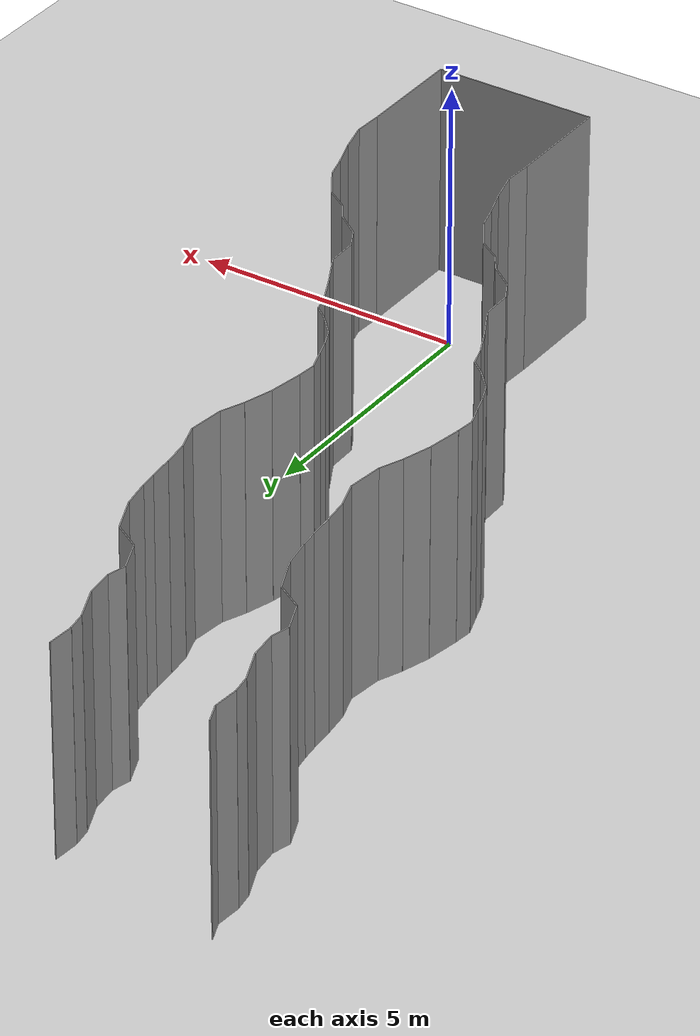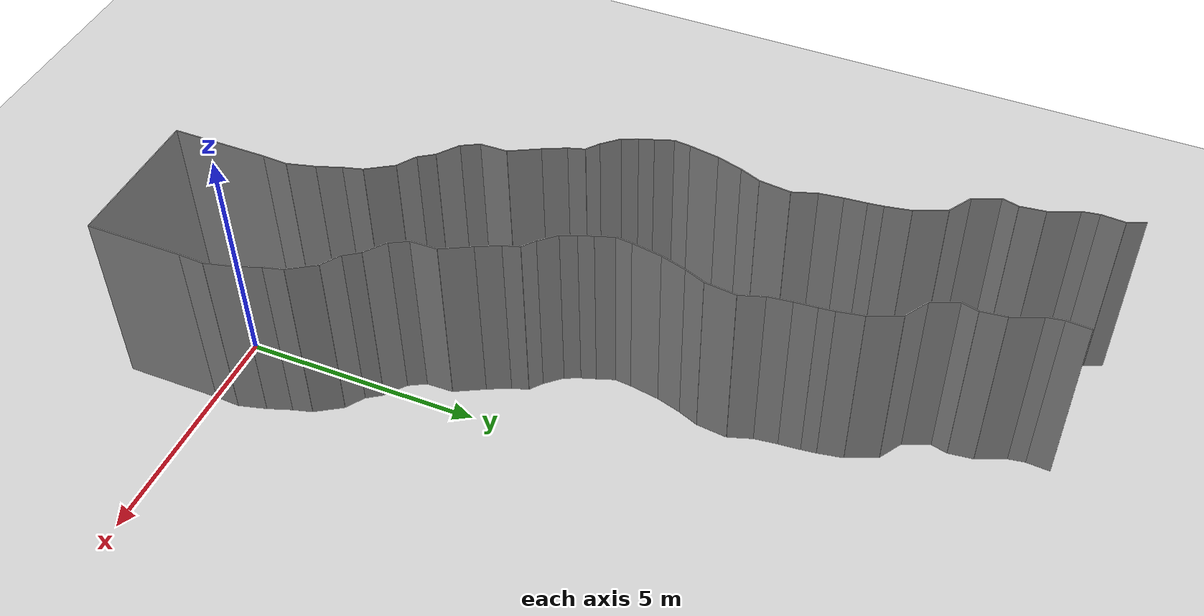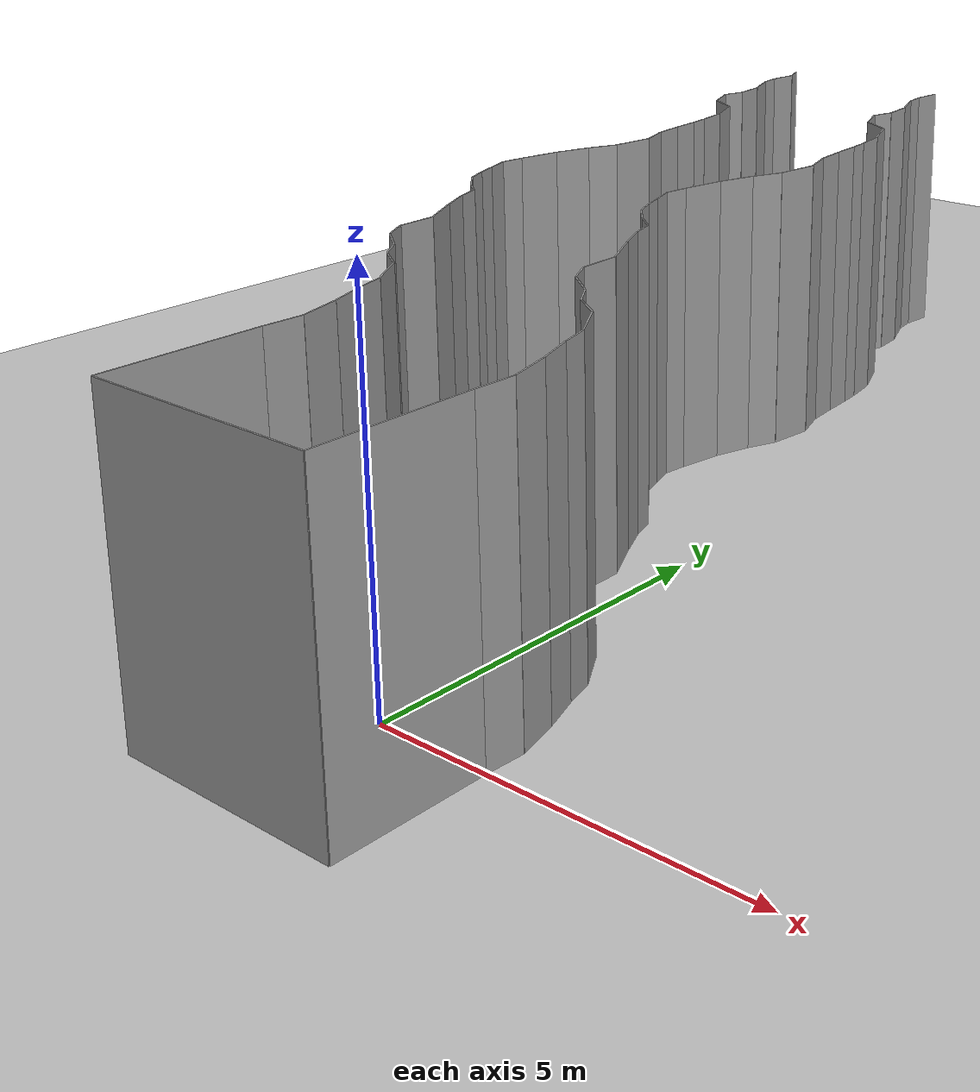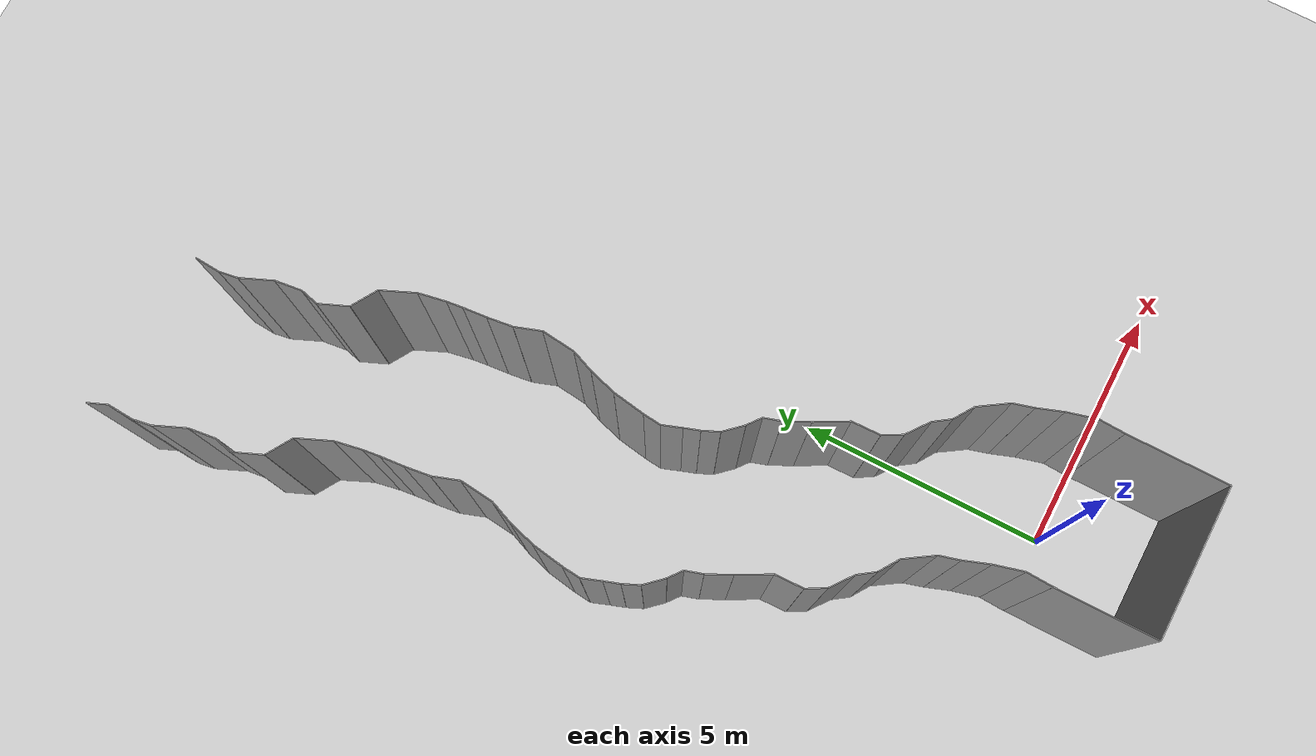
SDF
<sdf version="1.6">
 <world name="default">
  <model name="ground_plane">
   <static>1</static>
   <link name="link">
    <collision name="collision">
     <geometry><plane><normal>0 0 1</normal><size>200 200</size></plane></geometry>
     <surface><friction><ode><mu>100</mu><mu2>50</mu2></ode></friction></surface>
    </collision>
    <visual name="visual">
     <cast_shadows>0</cast_shadows>
     <geometry><plane><normal>0 0 1</normal><size>200 200</size></plane></geometry>
     <material>
      <script><uri>file://media/materials/scripts/gazebo.material</uri><name>Gazebo/Grey</name></script>
     </material>
    </visual>
   </link>
   <pose>0 100 0 0 -0 0</pose>
  </model>
  <model name="wall_back">
   <static>1</static>
   <pose>0.0 -2 2 0.0 0 0.0</pose>
   <link name="link">
    <collision name="collision"><geometry><box><size>3 0.02 4</size></box></geometry></collision>
    <visual name="visual">
     <material>
      <script><name>Gazebo/Grey</name><uri>file://media/materials/scripts/gazebo.material</uri></script>
     </material>
     <geometry><box><size>3 0.02 4</size></box></geometry>
    </visual>
   </link>
  </model>
  <model name="wall_left">
   <static>1</static>
   <pose>1.5 -1 2 0 0 0.00</pose>
   <link name="link">
    <collision name="collision"><geometry><box><size>0.02 2 4</size></box></geometry></collision>
    <visual name="visual">
     <material>
      <script><name>Gazebo/Grey</name><uri>file://media/materials/scripts/gazebo.material</uri></script>
     </material>
     <geometry><box><size>0.02 2 4</size></box></geometry>
    </visual>
   </link>
  </model>
  <model name="wall_right">
   <static>1</static>
   <pose>-1.5 -1 2 0 0 0.00</pose>
   <link name="link">
    <collision name="collision"><geometry><box><size>0.02 2 4</size></box></geometry></collision>
    <visual name="visual">
     <material>
      <script><name>Gazebo/Grey</name><uri>file://media/materials/scripts/gazebo.material</uri></script>
     </material>
     <geometry><box><size>0.02 2 4</size></box></geometry>
    </visual>
   </link>
  </model>
  <model name="wall_0">
   <static>1</static>
   <pose>-1.488196250125821 0.2607669083539488 2 0 0 -0.045234642740819266</pose>
   <link name="link">
    <collision name="collision"><geometry><box><size>0.02 0.522067846179 4</size></box></geometry></collision>
    <visual name="visual">
     <material>
      <script><name>Gazebo/Grey</name><uri>file://media/materials/scripts/gazebo.material</uri></script>
     </material>
     <geometry><box><size>0.02 0.522067846179 4</size></box></geometry>
    </visual>
   </link>
  </model>
  <model name="wall_1">
   <static>1</static>
   <pose>1.511803749874179 0.2607669083539488 2 0 0 -0.045234642740819266</pose>
   <link name="link">
    <collision name="collision"><geometry><box><size>0.02 0.522067846179 4</size></box></geometry></collision>
    <visual name="visual">
     <material>
      <script><name>Gazebo/Grey</name><uri>file://media/materials/scripts/gazebo.material</uri></script>
     </material>
     <geometry><box><size>0.02 0.522067846179 4</size></box></geometry>
    </visual>
   </link>
  </model>
  <model name="wall_2">
   <static>1</static>
   <pose>-1.5514209833075863 0.8059642517263823 2 0 0 0.25791011651710716</pose>
   <link name="link">
    <collision name="collision"><geometry><box><size>0.02 0.588319456195 4</size></box></geometry></collision>
    <visual name="visual">
     <material>
      <script><name>Gazebo/Grey</name><uri>file://media/materials/scripts/gazebo.material</uri></script>
     </material>
     <geometry><box><size>0.02 0.588319456195 4</size></box></geometry>
    </visual>
   </link>
  </model>
  <model name="wall_3">
   <static>1</static>
   <pose>1.4485790166924137 0.8059642517263823 2 0 0 0.25791011651710716</pose>
   <link name="link">
    <collision name="collision"><geometry><box><size>0.02 0.588319456195 4</size></box></geometry></collision>
    <visual name="visual">
     <material>
      <script><name>Gazebo/Grey</name><uri>file://media/materials/scripts/gazebo.material</uri></script>
     </material>
     <geometry><box><size>0.02 0.588319456195 4</size></box></geometry>
    </visual>
   </link>
  </model>
  <model name="wall_4">
   <static>1</static>
   <pose>-1.7142074546539643 1.3381656480157638 2 0 0 0.3404026408139336</pose>
   <link name="link">
    <collision name="collision"><geometry><box><size>0.02 0.525706814709 4</size></box></geometry></collision>
    <visual name="visual">
     <material>
      <script><name>Gazebo/Grey</name><uri>file://media/materials/scripts/gazebo.material</uri></script>
     </material>
     <geometry><box><size>0.02 0.525706814709 4</size></box></geometry>
    </visual>
   </link>
  </model>
  <model name="wall_5">
   <static>1</static>
   <pose>1.2857925453460357 1.3381656480157638 2 0 0 0.3404026408139336</pose>
   <link name="link">
    <collision name="collision"><geometry><box><size>0.02 0.525706814709 4</size></box></geometry></collision>
    <visual name="visual">
     <material>
      <script><name>Gazebo/Grey</name><uri>file://media/materials/scripts/gazebo.material</uri></script>
     </material>
     <geometry><box><size>0.02 0.525706814709 4</size></box></geometry>
    </visual>
   </link>
  </model>
  <model name="wall_6">
   <static>1</static>
   <pose>-1.8568225131044054 1.7834236534758765 2 0 0 0.27094477200006256</pose>
   <link name="link">
    <collision name="collision"><geometry><box><size>0.02 0.40992892442 4</size></box></geometry></collision>
    <visual name="visual">
     <material>
      <script><name>Gazebo/Grey</name><uri>file://media/materials/scripts/gazebo.material</uri></script>
     </material>
     <geometry><box><size>0.02 0.40992892442 4</size></box></geometry>
    </visual>
   </link>
  </model>
  <model name="wall_7">
   <static>1</static>
   <pose>1.1431774868955946 1.7834236534758765 2 0 0 0.27094477200006256</pose>
   <link name="link">
    <collision name="collision"><geometry><box><size>0.02 0.40992892442 4</size></box></geometry></collision>
    <visual name="visual">
     <material>
      <script><name>Gazebo/Grey</name><uri>file://media/materials/scripts/gazebo.material</uri></script>
     </material>
     <geometry><box><size>0.02 0.40992892442 4</size></box></geometry>
    </visual>
   </link>
  </model>
  <model name="wall_8">
   <static>1</static>
   <pose>-2.0858675047094546 2.2504126137847265 2 0 0 0.573792885363055</pose>
   <link name="link">
    <collision name="collision"><geometry><box><size>0.02 0.64178723817 4</size></box></geometry></collision>
    <visual name="visual">
     <material>
      <script><name>Gazebo/Grey</name><uri>file://media/materials/scripts/gazebo.material</uri></script>
     </material>
     <geometry><box><size>0.02 0.64178723817 4</size></box></geometry>
    </visual>
   </link>
  </model>
  <model name="wall_9">
   <static>1</static>
   <pose>0.9141324952905454 2.2504126137847265 2 0 0 0.573792885363055</pose>
   <link name="link">
    <collision name="collision"><geometry><box><size>0.02 0.64178723817 4</size></box></geometry></collision>
    <visual name="visual">
     <material>
      <script><name>Gazebo/Grey</name><uri>file://media/materials/scripts/gazebo.material</uri></script>
     </material>
     <geometry><box><size>0.02 0.64178723817 4</size></box></geometry>
    </visual>
   </link>
  </model>
  <model name="wall_10">
   <static>1</static>
   <pose>-2.448899243307415 2.645589367669755 2 0 0 0.9836045022743397</pose>
   <link name="link">
    <collision name="collision"><geometry><box><size>0.02 0.453678970746 4</size></box></geometry></collision>
    <visual name="visual">
     <material>
      <script><name>Gazebo/Grey</name><uri>file://media/materials/scripts/gazebo.material</uri></script>
     </material>
     <geometry><box><size>0.02 0.453678970746 4</size></box></geometry>
    </visual>
   </link>
  </model>
  <model name="wall_11">
   <static>1</static>
   <pose>0.551100756692585 2.645589367669755 2 0 0 0.9836045022743397</pose>
   <link name="link">
    <collision name="collision"><geometry><box><size>0.02 0.453678970746 4</size></box></geometry></collision>
    <visual name="visual">
     <material>
      <script><name>Gazebo/Grey</name><uri>file://media/materials/scripts/gazebo.material</uri></script>
     </material>
     <geometry><box><size>0.02 0.453678970746 4</size></box></geometry>
    </visual>
   </link>
  </model>
  <model name="wall_12">
   <static>1</static>
   <pose>-2.7448915006535177 2.926327362351517 2 0 0 0.6046592441304547</pose>
   <link name="link">
    <collision name="collision"><geometry><box><size>0.02 0.376963504168 4</size></box></geometry></collision>
    <visual name="visual">
     <material>
      <script><name>Gazebo/Grey</name><uri>file://media/materials/scripts/gazebo.material</uri></script>
     </material>
     <geometry><box><size>0.02 0.376963504168 4</size></box></geometry>
    </visual>
   </link>
  </model>
  <model name="wall_13">
   <static>1</static>
   <pose>0.2551084993464823 2.926327362351517 2 0 0 0.6046592441304547</pose>
   <link name="link">
    <collision name="collision"><geometry><box><size>0.02 0.376963504168 4</size></box></geometry></collision>
    <visual name="visual">
     <material>
      <script><name>Gazebo/Grey</name><uri>file://media/materials/scripts/gazebo.material</uri></script>
     </material>
     <geometry><box><size>0.02 0.376963504168 4</size></box></geometry>
    </visual>
   </link>
  </model>
  <model name="wall_14">
   <static>1</static>
   <pose>-3.061418504655303 3.240565309927438 2 0 0 0.9207833559223908</pose>
   <link name="link">
    <collision name="collision"><geometry><box><size>0.02 0.526026603753 4</size></box></geometry></collision>
    <visual name="visual">
     <material>
      <script><name>Gazebo/Grey</name><uri>file://media/materials/scripts/gazebo.material</uri></script>
     </material>
     <geometry><box><size>0.02 0.526026603753 4</size></box></geometry>
    </visual>
   </link>
  </model>
  <model name="wall_15">
   <static>1</static>
   <pose>-0.061418504655303074 3.240565309927438 2 0 0 0.9207833559223908</pose>
   <link name="link">
    <collision name="collision"><geometry><box><size>0.02 0.526026603753 4</size></box></geometry></collision>
    <visual name="visual">
     <material>
      <script><name>Gazebo/Grey</name><uri>file://media/materials/scripts/gazebo.material</uri></script>
     </material>
     <geometry><box><size>0.02 0.526026603753 4</size></box></geometry>
    </visual>
   </link>
  </model>
  <model name="wall_16">
   <static>1</static>
   <pose>-3.368975870759927 3.578136511810658 2 0 0 0.5031047319861869</pose>
   <link name="link">
    <collision name="collision"><geometry><box><size>0.02 0.40725597237 4</size></box></geometry></collision>
    <visual name="visual">
     <material>
      <script><name>Gazebo/Grey</name><uri>file://media/materials/scripts/gazebo.material</uri></script>
     </material>
     <geometry><box><size>0.02 0.40725597237 4</size></box></geometry>
    </visual>
   </link>
  </model>
  <model name="wall_17">
   <static>1</static>
   <pose>-0.3689758707599271 3.578136511810658 2 0 0 0.5031047319861869</pose>
   <link name="link">
    <collision name="collision"><geometry><box><size>0.02 0.40725597237 4</size></box></geometry></collision>
    <visual name="visual">
     <material>
      <script><name>Gazebo/Grey</name><uri>file://media/materials/scripts/gazebo.material</uri></script>
     </material>
     <geometry><box><size>0.02 0.40725597237 4</size></box></geometry>
    </visual>
   </link>
  </model>
  <model name="wall_18">
   <static>1</static>
   <pose>-3.473970301201742 4.038109908194635 2 0 0 0.02420047766314063</pose>
   <link name="link">
    <collision name="collision"><geometry><box><size>0.02 0.563318919828 4</size></box></geometry></collision>
    <visual name="visual">
     <material>
      <script><name>Gazebo/Grey</name><uri>file://media/materials/scripts/gazebo.material</uri></script>
     </material>
     <geometry><box><size>0.02 0.563318919828 4</size></box></geometry>
    </visual>
   </link>
  </model>
  <model name="wall_19">
   <static>1</static>
   <pose>-0.4739703012017422 4.038109908194635 2 0 0 0.02420047766314063</pose>
   <link name="link">
    <collision name="collision"><geometry><box><size>0.02 0.563318919828 4</size></box></geometry></collision>
    <visual name="visual">
     <material>
      <script><name>Gazebo/Grey</name><uri>file://media/materials/scripts/gazebo.material</uri></script>
     </material>
     <geometry><box><size>0.02 0.563318919828 4</size></box></geometry>
    </visual>
   </link>
  </model>
  <model name="wall_20">
   <static>1</static>
   <pose>-3.6416938392011042 4.6202592312180615 2 0 0 0.49151705263493883</pose>
   <link name="link">
    <collision name="collision"><geometry><box><size>0.02 0.681865340788 4</size></box></geometry></collision>
    <visual name="visual">
     <material>
      <script><name>Gazebo/Grey</name><uri>file://media/materials/scripts/gazebo.material</uri></script>
     </material>
     <geometry><box><size>0.02 0.681865340788 4</size></box></geometry>
    </visual>
   </link>
  </model>
  <model name="wall_21">
   <static>1</static>
   <pose>-0.6416938392011042 4.6202592312180615 2 0 0 0.49151705263493883</pose>
   <link name="link">
    <collision name="collision"><geometry><box><size>0.02 0.681865340788 4</size></box></geometry></collision>
    <visual name="visual">
     <material>
      <script><name>Gazebo/Grey</name><uri>file://media/materials/scripts/gazebo.material</uri></script>
     </material>
     <geometry><box><size>0.02 0.681865340788 4</size></box></geometry>
    </visual>
   </link>
  </model>
  <model name="wall_22">
   <static>1</static>
   <pose>-3.9141407788428135 5.151917807327713 2 0 0 0.4496899690787338</pose>
   <link name="link">
    <collision name="collision"><geometry><box><size>0.02 0.513193159241 4</size></box></geometry></collision>
    <visual name="visual">
     <material>
      <script><name>Gazebo/Grey</name><uri>file://media/materials/scripts/gazebo.material</uri></script>
     </material>
     <geometry><box><size>0.02 0.513193159241 4</size></box></geometry>
    </visual>
   </link>
  </model>
  <model name="wall_23">
   <static>1</static>
   <pose>-0.9141407788428135 5.151917807327713 2 0 0 0.4496899690787338</pose>
   <link name="link">
    <collision name="collision"><geometry><box><size>0.02 0.513193159241 4</size></box></geometry></collision>
    <visual name="visual">
     <material>
      <script><name>Gazebo/Grey</name><uri>file://media/materials/scripts/gazebo.material</uri></script>
     </material>
     <geometry><box><size>0.02 0.513193159241 4</size></box></geometry>
    </visual>
   </link>
  </model>
  <model name="wall_24">
   <static>1</static>
   <pose>-4.078167008941469 5.551443125008185 2 0 0 0.30207329674196143</pose>
   <link name="link">
    <collision name="collision"><geometry><box><size>0.02 0.352854812505 4</size></box></geometry></collision>
    <visual name="visual">
     <material>
      <script><name>Gazebo/Grey</name><uri>file://media/materials/scripts/gazebo.material</uri></script>
     </material>
     <geometry><box><size>0.02 0.352854812505 4</size></box></geometry>
    </visual>
   </link>
  </model>
  <model name="wall_25">
   <static>1</static>
   <pose>-1.0781670089414694 5.551443125008185 2 0 0 0.30207329674196143</pose>
   <link name="link">
    <collision name="collision"><geometry><box><size>0.02 0.352854812505 4</size></box></geometry></collision>
    <visual name="visual">
     <material>
      <script><name>Gazebo/Grey</name><uri>file://media/materials/scripts/gazebo.material</uri></script>
     </material>
     <geometry><box><size>0.02 0.352854812505 4</size></box></geometry>
    </visual>
   </link>
  </model>
  <model name="wall_26">
   <static>1</static>
   <pose>-4.257138351103639 5.818999568436784 2 0 0 0.9061141826045659</pose>
   <link name="link">
    <collision name="collision"><geometry><box><size>0.02 0.321387554116 4</size></box></geometry></collision>
    <visual name="visual">
     <material>
      <script><name>Gazebo/Grey</name><uri>file://media/materials/scripts/gazebo.material</uri></script>
     </material>
     <geometry><box><size>0.02 0.321387554116 4</size></box></geometry>
    </visual>
   </link>
  </model>
  <model name="wall_27">
   <static>1</static>
   <pose>-1.257138351103639 5.818999568436784 2 0 0 0.9061141826045659</pose>
   <link name="link">
    <collision name="collision"><geometry><box><size>0.02 0.321387554116 4</size></box></geometry></collision>
    <visual name="visual">
     <material>
      <script><name>Gazebo/Grey</name><uri>file://media/materials/scripts/gazebo.material</uri></script>
     </material>
     <geometry><box><size>0.02 0.321387554116 4</size></box></geometry>
    </visual>
   </link>
  </model>
  <model name="wall_28">
   <static>1</static>
   <pose>-4.534588008272247 6.084138800445451 2 0 0 0.7379355639912297</pose>
   <link name="link">
    <collision name="collision"><geometry><box><size>0.02 0.448793259636 4</size></box></geometry></collision>
    <visual name="visual">
     <material>
      <script><name>Gazebo/Grey</name><uri>file://media/materials/scripts/gazebo.material</uri></script>
     </material>
     <geometry><box><size>0.02 0.448793259636 4</size></box></geometry>
    </visual>
   </link>
  </model>
  <model name="wall_29">
   <static>1</static>
   <pose>-1.5345880082722472 6.084138800445451 2 0 0 0.7379355639912297</pose>
   <link name="link">
    <collision name="collision"><geometry><box><size>0.02 0.448793259636 4</size></box></geometry></collision>
    <visual name="visual">
     <material>
      <script><name>Gazebo/Grey</name><uri>file://media/materials/scripts/gazebo.material</uri></script>
     </material>
     <geometry><box><size>0.02 0.448793259636 4</size></box></geometry>
    </visual>
   </link>
  </model>
  <model name="wall_30">
   <static>1</static>
   <pose>-4.754658241283097 6.408069520371159 2 0 0 0.4125145914691693</pose>
   <link name="link">
    <collision name="collision"><geometry><box><size>0.02 0.344735652462 4</size></box></geometry></collision>
    <visual name="visual">
     <material>
      <script><name>Gazebo/Grey</name><uri>file://media/materials/scripts/gazebo.material</uri></script>
     </material>
     <geometry><box><size>0.02 0.344735652462 4</size></box></geometry>
    </visual>
   </link>
  </model>
  <model name="wall_31">
   <static>1</static>
   <pose>-1.7546582412830967 6.408069520371159 2 0 0 0.4125145914691693</pose>
   <link name="link">
    <collision name="collision"><geometry><box><size>0.02 0.344735652462 4</size></box></geometry></collision>
    <visual name="visual">
     <material>
      <script><name>Gazebo/Grey</name><uri>file://media/materials/scripts/gazebo.material</uri></script>
     </material>
     <geometry><box><size>0.02 0.344735652462 4</size></box></geometry>
    </visual>
   </link>
  </model>
  <model name="wall_32">
   <static>1</static>
   <pose>-4.873573770462193 6.714864603163335 2 0 0 0.3228507294330113</pose>
   <link name="link">
    <collision name="collision"><geometry><box><size>0.02 0.313995074398 4</size></box></geometry></collision>
    <visual name="visual">
     <material>
      <script><name>Gazebo/Grey</name><uri>file://media/materials/scripts/gazebo.material</uri></script>
     </material>
     <geometry><box><size>0.02 0.313995074398 4</size></box></geometry>
    </visual>
   </link>
  </model>
  <model name="wall_33">
   <static>1</static>
   <pose>-1.873573770462193 6.714864603163335 2 0 0 0.3228507294330113</pose>
   <link name="link">
    <collision name="collision"><geometry><box><size>0.02 0.313995074398 4</size></box></geometry></collision>
    <visual name="visual">
     <material>
      <script><name>Gazebo/Grey</name><uri>file://media/materials/scripts/gazebo.material</uri></script>
     </material>
     <geometry><box><size>0.02 0.313995074398 4</size></box></geometry>
    </visual>
   </link>
  </model>
  <model name="wall_34">
   <static>1</static>
   <pose>-4.989544463483804 7.051096613824288 2 0 0 0.33947221708006825</pose>
   <link name="link">
    <collision name="collision"><geometry><box><size>0.02 0.397369204275 4</size></box></geometry></collision>
    <visual name="visual">
     <material>
      <script><name>Gazebo/Grey</name><uri>file://media/materials/scripts/gazebo.material</uri></script>
     </material>
     <geometry><box><size>0.02 0.397369204275 4</size></box></geometry>
    </visual>
   </link>
  </model>
  <model name="wall_35">
   <static>1</static>
   <pose>-1.9895444634838038 7.051096613824288 2 0 0 0.33947221708006825</pose>
   <link name="link">
    <collision name="collision"><geometry><box><size>0.02 0.397369204275 4</size></box></geometry></collision>
    <visual name="visual">
     <material>
      <script><name>Gazebo/Grey</name><uri>file://media/materials/scripts/gazebo.material</uri></script>
     </material>
     <geometry><box><size>0.02 0.397369204275 4</size></box></geometry>
    </visual>
   </link>
  </model>
  <model name="wall_36">
   <static>1</static>
   <pose>-5.037757267641564 7.4127555262891525 2 0 0 -0.10259732752561486</pose>
   <link name="link">
    <collision name="collision"><geometry><box><size>0.02 0.350469204426 4</size></box></geometry></collision>
    <visual name="visual">
     <material>
      <script><name>Gazebo/Grey</name><uri>file://media/materials/scripts/gazebo.material</uri></script>
     </material>
     <geometry><box><size>0.02 0.350469204426 4</size></box></geometry>
    </visual>
   </link>
  </model>
  <model name="wall_37">
   <static>1</static>
   <pose>-2.037757267641564 7.4127555262891525 2 0 0 -0.10259732752561486</pose>
   <link name="link">
    <collision name="collision"><geometry><box><size>0.02 0.350469204426 4</size></box></geometry></collision>
    <visual name="visual">
     <material>
      <script><name>Gazebo/Grey</name><uri>file://media/materials/scripts/gazebo.material</uri></script>
     </material>
     <geometry><box><size>0.02 0.350469204426 4</size></box></geometry>
    </visual>
   </link>
  </model>
  <model name="wall_38">
   <static>1</static>
   <pose>-4.9675300686031445 7.903795718262891 2 0 0 -0.16358857263637194</pose>
   <link name="link">
    <collision name="collision"><geometry><box><size>0.02 0.642025673028 4</size></box></geometry></collision>
    <visual name="visual">
     <material>
      <script><name>Gazebo/Grey</name><uri>file://media/materials/scripts/gazebo.material</uri></script>
     </material>
     <geometry><box><size>0.02 0.642025673028 4</size></box></geometry>
    </visual>
   </link>
  </model>
  <model name="wall_39">
   <static>1</static>
   <pose>-1.9675300686031445 7.903795718262891 2 0 0 -0.16358857263637194</pose>
   <link name="link">
    <collision name="collision"><geometry><box><size>0.02 0.642025673028 4</size></box></geometry></collision>
    <visual name="visual">
     <material>
      <script><name>Gazebo/Grey</name><uri>file://media/materials/scripts/gazebo.material</uri></script>
     </material>
     <geometry><box><size>0.02 0.642025673028 4</size></box></geometry>
    </visual>
   </link>
  </model>
  <model name="wall_40">
   <static>1</static>
   <pose>-4.835692520840622 8.486564621160776 2 0 0 -0.29057677057008835</pose>
   <link name="link">
    <collision name="collision"><geometry><box><size>0.02 0.555365272946 4</size></box></geometry></collision>
    <visual name="visual">
     <material>
      <script><name>Gazebo/Grey</name><uri>file://media/materials/scripts/gazebo.material</uri></script>
     </material>
     <geometry><box><size>0.02 0.555365272946 4</size></box></geometry>
    </visual>
   </link>
  </model>
  <model name="wall_41">
   <static>1</static>
   <pose>-1.835692520840622 8.486564621160776 2 0 0 -0.29057677057008835</pose>
   <link name="link">
    <collision name="collision"><geometry><box><size>0.02 0.555365272946 4</size></box></geometry></collision>
    <visual name="visual">
     <material>
      <script><name>Gazebo/Grey</name><uri>file://media/materials/scripts/gazebo.material</uri></script>
     </material>
     <geometry><box><size>0.02 0.555365272946 4</size></box></geometry>
    </visual>
   </link>
  </model>
  <model name="wall_42">
   <static>1</static>
   <pose>-4.667932031960981 8.969724280892786 2 0 0 -0.38587851829317765</pose>
   <link name="link">
    <collision name="collision"><geometry><box><size>0.02 0.468700016477 4</size></box></geometry></collision>
    <visual name="visual">
     <material>
      <script><name>Gazebo/Grey</name><uri>file://media/materials/scripts/gazebo.material</uri></script>
     </material>
     <geometry><box><size>0.02 0.468700016477 4</size></box></geometry>
    </visual>
   </link>
  </model>
  <model name="wall_43">
   <static>1</static>
   <pose>-1.667932031960981 8.969724280892786 2 0 0 -0.38587851829317765</pose>
   <link name="link">
    <collision name="collision"><geometry><box><size>0.02 0.468700016477 4</size></box></geometry></collision>
    <visual name="visual">
     <material>
      <script><name>Gazebo/Grey</name><uri>file://media/materials/scripts/gazebo.material</uri></script>
     </material>
     <geometry><box><size>0.02 0.468700016477 4</size></box></geometry>
    </visual>
   </link>
  </model>
  <model name="wall_44">
   <static>1</static>
   <pose>-4.543004764600705 9.516516062561731 2 0 0 -0.11093815816098244</pose>
   <link name="link">
    <collision name="collision"><geometry><box><size>0.02 0.663426230295 4</size></box></geometry></collision>
    <visual name="visual">
     <material>
      <script><name>Gazebo/Grey</name><uri>file://media/materials/scripts/gazebo.material</uri></script>
     </material>
     <geometry><box><size>0.02 0.663426230295 4</size></box></geometry>
    </visual>
   </link>
  </model>
  <model name="wall_45">
   <static>1</static>
   <pose>-1.5430047646007052 9.516516062561731 2 0 0 -0.11093815816098244</pose>
   <link name="link">
    <collision name="collision"><geometry><box><size>0.02 0.663426230295 4</size></box></geometry></collision>
    <visual name="visual">
     <material>
      <script><name>Gazebo/Grey</name><uri>file://media/materials/scripts/gazebo.material</uri></script>
     </material>
     <geometry><box><size>0.02 0.663426230295 4</size></box></geometry>
    </visual>
   </link>
  </model>
  <model name="wall_46">
   <static>1</static>
   <pose>-4.590894013853502 10.096853778309976 2 0 0 0.32554756393155354</pose>
   <link name="link">
    <collision name="collision"><geometry><box><size>0.02 0.529119087676 4</size></box></geometry></collision>
    <visual name="visual">
     <material>
      <script><name>Gazebo/Grey</name><uri>file://media/materials/scripts/gazebo.material</uri></script>
     </material>
     <geometry><box><size>0.02 0.529119087676 4</size></box></geometry>
    </visual>
   </link>
  </model>
  <model name="wall_47">
   <static>1</static>
   <pose>-1.590894013853502 10.096853778309976 2 0 0 0.32554756393155354</pose>
   <link name="link">
    <collision name="collision"><geometry><box><size>0.02 0.529119087676 4</size></box></geometry></collision>
    <visual name="visual">
     <material>
      <script><name>Gazebo/Grey</name><uri>file://media/materials/scripts/gazebo.material</uri></script>
     </material>
     <geometry><box><size>0.02 0.529119087676 4</size></box></geometry>
    </visual>
   </link>
  </model>
  <model name="wall_48">
   <static>1</static>
   <pose>-4.705753473052596 10.59333963004754 2 0 0 0.12242490149511323</pose>
   <link name="link">
    <collision name="collision"><geometry><box><size>0.02 0.495351699072 4</size></box></geometry></collision>
    <visual name="visual">
     <material>
      <script><name>Gazebo/Grey</name><uri>file://media/materials/scripts/gazebo.material</uri></script>
     </material>
     <geometry><box><size>0.02 0.495351699072 4</size></box></geometry>
    </visual>
   </link>
  </model>
  <model name="wall_49">
   <static>1</static>
   <pose>-1.7057534730525958 10.59333963004754 2 0 0 0.12242490149511323</pose>
   <link name="link">
    <collision name="collision"><geometry><box><size>0.02 0.495351699072 4</size></box></geometry></collision>
    <visual name="visual">
     <material>
      <script><name>Gazebo/Grey</name><uri>file://media/materials/scripts/gazebo.material</uri></script>
     </material>
     <geometry><box><size>0.02 0.495351699072 4</size></box></geometry>
    </visual>
   </link>
  </model>
  <model name="wall_50">
   <static>1</static>
   <pose>-4.754534412797323 11.067776973373455 2 0 0 0.08089785638518006</pose>
   <link name="link">
    <collision name="collision"><geometry><box><size>0.02 0.458730738328 4</size></box></geometry></collision>
    <visual name="visual">
     <material>
      <script><name>Gazebo/Grey</name><uri>file://media/materials/scripts/gazebo.material</uri></script>
     </material>
     <geometry><box><size>0.02 0.458730738328 4</size></box></geometry>
    </visual>
   </link>
  </model>
  <model name="wall_51">
   <static>1</static>
   <pose>-1.754534412797323 11.067776973373455 2 0 0 0.08089785638518006</pose>
   <link name="link">
    <collision name="collision"><geometry><box><size>0.02 0.458730738328 4</size></box></geometry></collision>
    <visual name="visual">
     <material>
      <script><name>Gazebo/Grey</name><uri>file://media/materials/scripts/gazebo.material</uri></script>
     </material>
     <geometry><box><size>0.02 0.458730738328 4</size></box></geometry>
    </visual>
   </link>
  </model>
  <model name="wall_52">
   <static>1</static>
   <pose>-4.790845780968448 11.453694893478593 2 0 0 0.11253041380742397</pose>
   <link name="link">
    <collision name="collision"><geometry><box><size>0.02 0.316607859682 4</size></box></geometry></collision>
    <visual name="visual">
     <material>
      <script><name>Gazebo/Grey</name><uri>file://media/materials/scripts/gazebo.material</uri></script>
     </material>
     <geometry><box><size>0.02 0.316607859682 4</size></box></geometry>
    </visual>
   </link>
  </model>
  <model name="wall_53">
   <static>1</static>
   <pose>-1.7908457809684482 11.453694893478593 2 0 0 0.11253041380742397</pose>
   <link name="link">
    <collision name="collision"><geometry><box><size>0.02 0.316607859682 4</size></box></geometry></collision>
    <visual name="visual">
     <material>
      <script><name>Gazebo/Grey</name><uri>file://media/materials/scripts/gazebo.material</uri></script>
     </material>
     <geometry><box><size>0.02 0.316607859682 4</size></box></geometry>
    </visual>
   </link>
  </model>
  <model name="wall_54">
   <static>1</static>
   <pose>-4.856595626362631 11.875914156889802 2 0 0 0.17914731323933936</pose>
   <link name="link">
    <collision name="collision"><geometry><box><size>0.02 0.538450537303 4</size></box></geometry></collision>
    <visual name="visual">
     <material>
      <script><name>Gazebo/Grey</name><uri>file://media/materials/scripts/gazebo.material</uri></script>
     </material>
     <geometry><box><size>0.02 0.538450537303 4</size></box></geometry>
    </visual>
   </link>
  </model>
  <model name="wall_55">
   <static>1</static>
   <pose>-1.8565956263626306 11.875914156889802 2 0 0 0.17914731323933936</pose>
   <link name="link">
    <collision name="collision"><geometry><box><size>0.02 0.538450537303 4</size></box></geometry></collision>
    <visual name="visual">
     <material>
      <script><name>Gazebo/Grey</name><uri>file://media/materials/scripts/gazebo.material</uri></script>
     </material>
     <geometry><box><size>0.02 0.538450537303 4</size></box></geometry>
    </visual>
   </link>
  </model>
  <model name="wall_56">
   <static>1</static>
   <pose>-5.0413944911102195 12.459744191013744 2 0 0 0.40528447478965723</pose>
   <link name="link">
    <collision name="collision"><geometry><box><size>0.02 0.69405184993 4</size></box></geometry></collision>
    <visual name="visual">
     <material>
      <script><name>Gazebo/Grey</name><uri>file://media/materials/scripts/gazebo.material</uri></script>
     </material>
     <geometry><box><size>0.02 0.69405184993 4</size></box></geometry>
    </visual>
   </link>
  </model>
  <model name="wall_57">
   <static>1</static>
   <pose>-2.0413944911102195 12.459744191013744 2 0 0 0.40528447478965723</pose>
   <link name="link">
    <collision name="collision"><geometry><box><size>0.02 0.69405184993 4</size></box></geometry></collision>
    <visual name="visual">
     <material>
      <script><name>Gazebo/Grey</name><uri>file://media/materials/scripts/gazebo.material</uri></script>
     </material>
     <geometry><box><size>0.02 0.69405184993 4</size></box></geometry>
    </visual>
   </link>
  </model>
  <model name="wall_58">
   <static>1</static>
   <pose>-5.420740802534709 12.927181729237825 2 0 0 1.021296094337982</pose>
   <link name="link">
    <collision name="collision"><geometry><box><size>0.02 0.568773317847 4</size></box></geometry></collision>
    <visual name="visual">
     <material>
      <script><name>Gazebo/Grey</name><uri>file://media/materials/scripts/gazebo.material</uri></script>
     </material>
     <geometry><box><size>0.02 0.568773317847 4</size></box></geometry>
    </visual>
   </link>
  </model>
  <model name="wall_59">
   <static>1</static>
   <pose>-2.4207408025347092 12.927181729237825 2 0 0 1.021296094337982</pose>
   <link name="link">
    <collision name="collision"><geometry><box><size>0.02 0.568773317847 4</size></box></geometry></collision>
    <visual name="visual">
     <material>
      <script><name>Gazebo/Grey</name><uri>file://media/materials/scripts/gazebo.material</uri></script>
     </material>
     <geometry><box><size>0.02 0.568773317847 4</size></box></geometry>
    </visual>
   </link>
  </model>
  <model name="wall_60">
   <static>1</static>
   <pose>-5.777403072547518 13.350445456474777 2 0 0 0.39375655927977804</pose>
   <link name="link">
    <collision name="collision"><geometry><box><size>0.02 0.59501304383 4</size></box></geometry></collision>
    <visual name="visual">
     <material>
      <script><name>Gazebo/Grey</name><uri>file://media/materials/scripts/gazebo.material</uri></script>
     </material>
     <geometry><box><size>0.02 0.59501304383 4</size></box></geometry>
    </visual>
   </link>
  </model>
  <model name="wall_61">
   <static>1</static>
   <pose>-2.777403072547518 13.350445456474777 2 0 0 0.39375655927977804</pose>
   <link name="link">
    <collision name="collision"><geometry><box><size>0.02 0.59501304383 4</size></box></geometry></collision>
    <visual name="visual">
     <material>
      <script><name>Gazebo/Grey</name><uri>file://media/materials/scripts/gazebo.material</uri></script>
     </material>
     <geometry><box><size>0.02 0.59501304383 4</size></box></geometry>
    </visual>
   </link>
  </model>
  <model name="wall_62">
   <static>1</static>
   <pose>-5.8464923272789475 13.798984009160009 2 0 0 -0.2536373217993913</pose>
   <link name="link">
    <collision name="collision"><geometry><box><size>0.02 0.359086393963 4</size></box></geometry></collision>
    <visual name="visual">
     <material>
      <script><name>Gazebo/Grey</name><uri>file://media/materials/scripts/gazebo.material</uri></script>
     </material>
     <geometry><box><size>0.02 0.359086393963 4</size></box></geometry>
    </visual>
   </link>
  </model>
  <model name="wall_63">
   <static>1</static>
   <pose>-2.8464923272789475 13.798984009160009 2 0 0 -0.2536373217993913</pose>
   <link name="link">
    <collision name="collision"><geometry><box><size>0.02 0.359086393963 4</size></box></geometry></collision>
    <visual name="visual">
     <material>
      <script><name>Gazebo/Grey</name><uri>file://media/materials/scripts/gazebo.material</uri></script>
     </material>
     <geometry><box><size>0.02 0.359086393963 4</size></box></geometry>
    </visual>
   </link>
  </model>
  <model name="wall_64">
   <static>1</static>
   <pose>-5.831909891357075 14.231770695221808 2 0 0 0.11711092110660469</pose>
   <link name="link">
    <collision name="collision"><geometry><box><size>0.02 0.521547963837 4</size></box></geometry></collision>
    <visual name="visual">
     <material>
      <script><name>Gazebo/Grey</name><uri>file://media/materials/scripts/gazebo.material</uri></script>
     </material>
     <geometry><box><size>0.02 0.521547963837 4</size></box></geometry>
    </visual>
   </link>
  </model>
  <model name="wall_65">
   <static>1</static>
   <pose>-2.831909891357075 14.231770695221808 2 0 0 0.11711092110660469</pose>
   <link name="link">
    <collision name="collision"><geometry><box><size>0.02 0.521547963837 4</size></box></geometry></collision>
    <visual name="visual">
     <material>
      <script><name>Gazebo/Grey</name><uri>file://media/materials/scripts/gazebo.material</uri></script>
     </material>
     <geometry><box><size>0.02 0.521547963837 4</size></box></geometry>
    </visual>
   </link>
  </model>
  <model name="wall_66">
   <static>1</static>
   <pose>-5.98955943739056 14.793070981324874 2 0 0 0.3982143067383126</pose>
   <link name="link">
    <collision name="collision"><geometry><box><size>0.02 0.655949889586 4</size></box></geometry></collision>
    <visual name="visual">
     <material>
      <script><name>Gazebo/Grey</name><uri>file://media/materials/scripts/gazebo.material</uri></script>
     </material>
     <geometry><box><size>0.02 0.655949889586 4</size></box></geometry>
    </visual>
   </link>
  </model>
  <model name="wall_67">
   <static>1</static>
   <pose>-2.98955943739056 14.793070981324874 2 0 0 0.3982143067383126</pose>
   <link name="link">
    <collision name="collision"><geometry><box><size>0.02 0.655949889586 4</size></box></geometry></collision>
    <visual name="visual">
     <material>
      <script><name>Gazebo/Grey</name><uri>file://media/materials/scripts/gazebo.material</uri></script>
     </material>
     <geometry><box><size>0.02 0.655949889586 4</size></box></geometry>
    </visual>
   </link>
  </model>
  <model name="wall_68">
   <static>1</static>
   <pose>-6.144753242367112 15.270274801998678 2 0 0 0.15883015454837238</pose>
   <link name="link">
    <collision name="collision"><geometry><box><size>0.02 0.354241454302 4</size></box></geometry></collision>
    <visual name="visual">
     <material>
      <script><name>Gazebo/Grey</name><uri>file://media/materials/scripts/gazebo.material</uri></script>
     </material>
     <geometry><box><size>0.02 0.354241454302 4</size></box></geometry>
    </visual>
   </link>
  </model>
  <model name="wall_69">
   <static>1</static>
   <pose>-3.144753242367112 15.270274801998678 2 0 0 0.15883015454837238</pose>
   <link name="link">
    <collision name="collision"><geometry><box><size>0.02 0.354241454302 4</size></box></geometry></collision>
    <visual name="visual">
     <material>
      <script><name>Gazebo/Grey</name><uri>file://media/materials/scripts/gazebo.material</uri></script>
     </material>
     <geometry><box><size>0.02 0.354241454302 4</size></box></geometry>
    </visual>
   </link>
  </model>
  <model name="wall_70">
   <static>1</static>
   <pose>-6.156168831343654 15.692642996915007 2 0 0 -0.06697016872661828</pose>
   <link name="link">
    <collision name="collision"><geometry><box><size>0.02 0.496065790554 4</size></box></geometry></collision>
    <visual name="visual">
     <material>
      <script><name>Gazebo/Grey</name><uri>file://media/materials/scripts/gazebo.material</uri></script>
     </material>
     <geometry><box><size>0.02 0.496065790554 4</size></box></geometry>
    </visual>
   </link>
  </model>
  <model name="wall_71">
   <static>1</static>
   <pose>-3.1561688313436536 15.692642996915007 2 0 0 -0.06697016872661828</pose>
   <link name="link">
    <collision name="collision"><geometry><box><size>0.02 0.496065790554 4</size></box></geometry></collision>
    <visual name="visual">
     <material>
      <script><name>Gazebo/Grey</name><uri>file://media/materials/scripts/gazebo.material</uri></script>
     </material>
     <geometry><box><size>0.02 0.496065790554 4</size></box></geometry>
    </visual>
   </link>
  </model>
  <model name="wall_72">
   <static>1</static>
   <pose>-6.213504606375548 16.121047888354436 2 0 0 0.3879311940219435</pose>
   <link name="link">
    <collision name="collision"><geometry><box><size>0.02 0.390902560778 4</size></box></geometry></collision>
    <visual name="visual">
     <material>
      <script><name>Gazebo/Grey</name><uri>file://media/materials/scripts/gazebo.material</uri></script>
     </material>
     <geometry><box><size>0.02 0.390902560778 4</size></box></geometry>
    </visual>
   </link>
  </model>
 </world>
</sdf>
